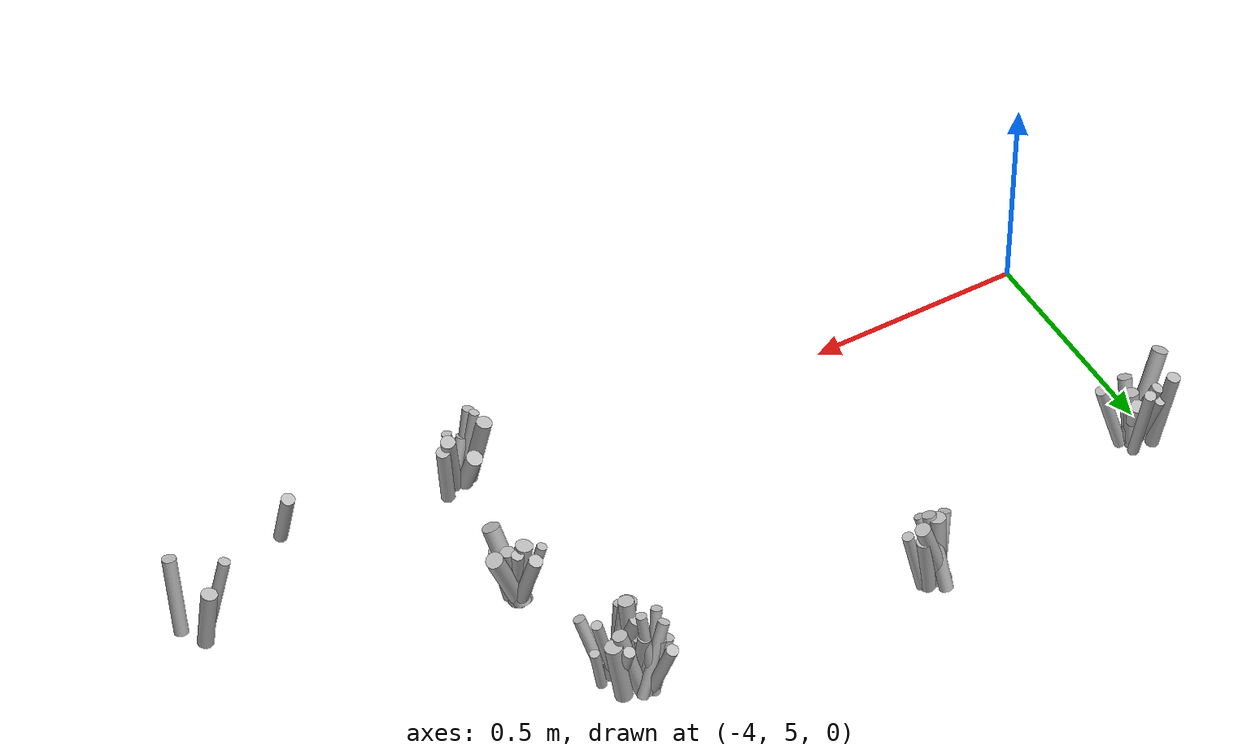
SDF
<sdf version="1.6">
 <world name="default">
  <model name="tussocks">
   <static>true</static>
   <link name="tuft38_6">
    <pose>-2.2297 4.8988 0.0752 0 0.2755 1.7186</pose>
    <visual name="tuft38_6_v">
     <geometry><cylinder><radius>0.0152</radius><length>0.1636</length></cylinder></geometry>
     <material>
      <script>
       <uri>model://bushfire/materials/scripts</uri>
       <uri>model://bushfire/materials/textures</uri>
       <name>Bushfire/Tussock</name>
      </script>
     </material>
    </visual>
   </link>
   <link name="tuft39_2">
    <pose>-1.9297 4.9894 0.0888 0 0.2311 4.5273</pose>
    <visual name="tuft39_2_v">
     <geometry><cylinder><radius>0.0159</radius><length>0.1931</length></cylinder></geometry>
     <material>
      <script>
       <uri>model://bushfire/materials/scripts</uri>
       <uri>model://bushfire/materials/textures</uri>
       <name>Bushfire/Foliage2</name>
      </script>
     </material>
    </visual>
   </link>
   <link name="tuft39_4">
    <pose>-1.9666 5.0642 0.0701 0 0.1253 2.7636</pose>
    <visual name="tuft39_4_v">
     <geometry><cylinder><radius>0.0181</radius><length>0.1523</length></cylinder></geometry>
     <material>
      <script>
       <uri>model://bushfire/materials/scripts</uri>
       <uri>model://bushfire/materials/textures</uri>
       <name>Bushfire/Foliage2</name>
      </script>
     </material>
    </visual>
   </link>
   <link name="tuft39_7">
    <pose>-1.9930 5.0530 0.1028 0 0.2592 3.0400</pose>
    <visual name="tuft39_7_v">
     <geometry><cylinder><radius>0.0130</radius><length>0.2236</length></cylinder></geometry>
     <material>
      <script>
       <uri>model://bushfire/materials/scripts</uri>
       <uri>model://bushfire/materials/textures</uri>
       <name>Bushfire/Foliage2</name>
      </script>
     </material>
    </visual>
   </link>
   <link name="tuft41_0">
    <pose>-2.6344 4.8865 0.0477 0 0.1887 4.8185</pose>
    <visual name="tuft41_0_v">
     <geometry><cylinder><radius>0.0114</radius><length>0.1036</length></cylinder></geometry>
     <material>
      <script>
       <uri>model://bushfire/materials/scripts</uri>
       <uri>model://bushfire/materials/textures</uri>
       <name>Bushfire/Foliage2</name>
      </script>
     </material>
    </visual>
   </link>
   <link name="tuft41_1">
    <pose>-2.6728 4.9408 0.0852 0 0.2078 2.4700</pose>
    <visual name="tuft41_1_v">
     <geometry><cylinder><radius>0.0176</radius><length>0.1852</length></cylinder></geometry>
     <material>
      <script>
       <uri>model://bushfire/materials/scripts</uri>
       <uri>model://bushfire/materials/textures</uri>
       <name>Bushfire/Foliage2</name>
      </script>
     </material>
    </visual>
   </link>
   <link name="tuft41_2">
    <pose>-2.5852 4.9614 0.0742 0 0.1050 0.7553</pose>
    <visual name="tuft41_2_v">
     <geometry><cylinder><radius>0.0155</radius><length>0.1613</length></cylinder></geometry>
     <material>
      <script>
       <uri>model://bushfire/materials/scripts</uri>
       <uri>model://bushfire/materials/textures</uri>
       <name>Bushfire/Tussock</name>
      </script>
     </material>
    </visual>
   </link>
   <link name="tuft41_4">
    <pose>-2.6436 4.9608 0.0558 0 0.3550 1.7035</pose>
    <visual name="tuft41_4_v">
     <geometry><cylinder><radius>0.0183</radius><length>0.1213</length></cylinder></geometry>
     <material>
      <script>
       <uri>model://bushfire/materials/scripts</uri>
       <uri>model://bushfire/materials/textures</uri>
       <name>Bushfire/Tussock</name>
      </script>
     </material>
    </visual>
   </link>
   <link name="tuft41_5">
    <pose>-2.6412 4.9101 0.0488 0 0.4099 3.6749</pose>
    <visual name="tuft41_5_v">
     <geometry><cylinder><radius>0.0138</radius><length>0.1060</length></cylinder></geometry>
     <material>
      <script>
       <uri>model://bushfire/materials/scripts</uri>
       <uri>model://bushfire/materials/textures</uri>
       <name>Bushfire/Foliage2</name>
      </script>
     </material>
    </visual>
   </link>
   <link name="tuft41_6">
    <pose>-2.6673 4.9087 0.0797 0 0.2387 3.2671</pose>
    <visual name="tuft41_6_v">
     <geometry><cylinder><radius>0.0114</radius><length>0.1732</length></cylinder></geometry>
     <material>
      <script>
       <uri>model://bushfire/materials/scripts</uri>
       <uri>model://bushfire/materials/textures</uri>
       <name>Bushfire/Foliage2</name>
      </script>
     </material>
    </visual>
   </link>
   <link name="tuft41_8">
    <pose>-2.6066 4.9487 0.0851 0 0.2193 0.8702</pose>
    <visual name="tuft41_8_v">
     <geometry><cylinder><radius>0.0165</radius><length>0.1850</length></cylinder></geometry>
     <material>
      <script>
       <uri>model://bushfire/materials/scripts</uri>
       <uri>model://bushfire/materials/textures</uri>
       <name>Bushfire/Tussock</name>
      </script>
     </material>
    </visual>
   </link>
   <link name="tuft41_9">
    <pose>-2.6629 4.8992 0.0793 0 0.2523 3.6186</pose>
    <visual name="tuft41_9_v">
     <geometry><cylinder><radius>0.0131</radius><length>0.1724</length></cylinder></geometry>
     <material>
      <script>
       <uri>model://bushfire/materials/scripts</uri>
       <uri>model://bushfire/materials/textures</uri>
       <name>Bushfire/Foliage2</name>
      </script>
     </material>
    </visual>
   </link>
   <link name="tuft67_0">
    <pose>-4.0101 5.5931 0.0963 0 0.1549 2.5951</pose>
    <visual name="tuft67_0_v">
     <geometry><cylinder><radius>0.0153</radius><length>0.2094</length></cylinder></geometry>
     <material>
      <script>
       <uri>model://bushfire/materials/scripts</uri>
       <uri>model://bushfire/materials/textures</uri>
       <name>Bushfire/Tussock</name>
      </script>
     </material>
    </visual>
   </link>
   <link name="tuft67_1">
    <pose>-3.9594 5.5352 0.0730 0 0.3567 4.5427</pose>
    <visual name="tuft67_1_v">
     <geometry><cylinder><radius>0.0161</radius><length>0.1588</length></cylinder></geometry>
     <material>
      <script>
       <uri>model://bushfire/materials/scripts</uri>
       <uri>model://bushfire/materials/textures</uri>
       <name>Bushfire/Foliage2</name>
      </script>
     </material>
    </visual>
   </link>
   <link name="tuft67_2">
    <pose>-3.9554 5.5572 0.0659 0 0.1672 4.6291</pose>
    <visual name="tuft67_2_v">
     <geometry><cylinder><radius>0.0173</radius><length>0.1433</length></cylinder></geometry>
     <material>
      <script>
       <uri>model://bushfire/materials/scripts</uri>
       <uri>model://bushfire/materials/textures</uri>
       <name>Bushfire/Tussock</name>
      </script>
     </material>
    </visual>
   </link>
   <link name="tuft67_3">
    <pose>-3.9940 5.5448 0.1065 0 0.4038 3.5072</pose>
    <visual name="tuft67_3_v">
     <geometry><cylinder><radius>0.0185</radius><length>0.2316</length></cylinder></geometry>
     <material>
      <script>
       <uri>model://bushfire/materials/scripts</uri>
       <uri>model://bushfire/materials/textures</uri>
       <name>Bushfire/Tussock</name>
      </script>
     </material>
    </visual>
   </link>
   <link name="tuft67_4">
    <pose>-3.9376 5.6173 0.1156 0 0.2645 1.2750</pose>
    <visual name="tuft67_4_v">
     <geometry><cylinder><radius>0.0130</radius><length>0.2514</length></cylinder></geometry>
     <material>
      <script>
       <uri>model://bushfire/materials/scripts</uri>
       <uri>model://bushfire/materials/textures</uri>
       <name>Bushfire/Foliage2</name>
      </script>
     </material>
    </visual>
   </link>
   <link name="tuft67_5">
    <pose>-3.9532 5.5643 0.0721 0 0.3986 1.1680</pose>
    <visual name="tuft67_5_v">
     <geometry><cylinder><radius>0.0153</radius><length>0.1567</length></cylinder></geometry>
     <material>
      <script>
       <uri>model://bushfire/materials/scripts</uri>
       <uri>model://bushfire/materials/textures</uri>
       <name>Bushfire/Foliage2</name>
      </script>
     </material>
    </visual>
   </link>
   <link name="tuft67_6">
    <pose>-3.9791 5.5839 0.0687 0 0.2859 2.3498</pose>
    <visual name="tuft67_6_v">
     <geometry><cylinder><radius>0.0137</radius><length>0.1493</length></cylinder></geometry>
     <material>
      <script>
       <uri>model://bushfire/materials/scripts</uri>
       <uri>model://bushfire/materials/textures</uri>
       <name>Bushfire/Foliage2</name>
      </script>
     </material>
    </visual>
   </link>
   <link name="tuft67_7">
    <pose>-3.9681 5.5666 0.0815 0 0.3993 2.6503</pose>
    <visual name="tuft67_7_v">
     <geometry><cylinder><radius>0.0142</radius><length>0.1771</length></cylinder></geometry>
     <material>
      <script>
       <uri>model://bushfire/materials/scripts</uri>
       <uri>model://bushfire/materials/textures</uri>
       <name>Bushfire/Tussock</name>
      </script>
     </material>
    </visual>
   </link>
   <link name="tuft67_8">
    <pose>-3.9065 5.5466 0.0871 0 0.2959 6.0212</pose>
    <visual name="tuft67_8_v">
     <geometry><cylinder><radius>0.0138</radius><length>0.1894</length></cylinder></geometry>
     <material>
      <script>
       <uri>model://bushfire/materials/scripts</uri>
       <uri>model://bushfire/materials/textures</uri>
       <name>Bushfire/Foliage2</name>
      </script>
     </material>
    </visual>
   </link>
   <link name="tuft73_0">
    <pose>-2.5867 5.2920 0.0798 0 0.1187 2.9032</pose>
    <visual name="tuft73_0_v">
     <geometry><cylinder><radius>0.0191</radius><length>0.1735</length></cylinder></geometry>
     <material>
      <script>
       <uri>model://bushfire/materials/scripts</uri>
       <uri>model://bushfire/materials/textures</uri>
       <name>Bushfire/Foliage2</name>
      </script>
     </material>
    </visual>
   </link>
   <link name="tuft73_1">
    <pose>-2.6126 5.2981 0.0738 0 0.2813 2.9074</pose>
    <visual name="tuft73_1_v">
     <geometry><cylinder><radius>0.0116</radius><length>0.1605</length></cylinder></geometry>
     <material>
      <script>
       <uri>model://bushfire/materials/scripts</uri>
       <uri>model://bushfire/materials/textures</uri>
       <name>Bushfire/Tussock</name>
      </script>
     </material>
    </visual>
   </link>
   <link name="tuft73_2">
    <pose>-2.5520 5.2964 0.0851 0 0.3510 0.2314</pose>
    <visual name="tuft73_2_v">
     <geometry><cylinder><radius>0.0195</radius><length>0.1851</length></cylinder></geometry>
     <material>
      <script>
       <uri>model://bushfire/materials/scripts</uri>
       <uri>model://bushfire/materials/textures</uri>
       <name>Bushfire/Tussock</name>
      </script>
     </material>
    </visual>
   </link>
   <link name="tuft73_3">
    <pose>-2.5778 5.2938 0.0771 0 0.1514 1.3186</pose>
    <visual name="tuft73_3_v">
     <geometry><cylinder><radius>0.0135</radius><length>0.1677</length></cylinder></geometry>
     <material>
      <script>
       <uri>model://bushfire/materials/scripts</uri>
       <uri>model://bushfire/materials/textures</uri>
       <name>Bushfire/Foliage2</name>
      </script>
     </material>
    </visual>
   </link>
   <link name="tuft73_4">
    <pose>-2.5860 5.3255 0.0886 0 0.3139 1.7742</pose>
    <visual name="tuft73_4_v">
     <geometry><cylinder><radius>0.0154</radius><length>0.1925</length></cylinder></geometry>
     <material>
      <script>
       <uri>model://bushfire/materials/scripts</uri>
       <uri>model://bushfire/materials/textures</uri>
       <name>Bushfire/Tussock</name>
      </script>
     </material>
    </visual>
   </link>
   <link name="tuft73_5">
    <pose>-2.5627 5.2583 0.0612 0 0.2647 5.1800</pose>
    <visual name="tuft73_5_v">
     <geometry><cylinder><radius>0.0157</radius><length>0.1331</length></cylinder></geometry>
     <material>
      <script>
       <uri>model://bushfire/materials/scripts</uri>
       <uri>model://bushfire/materials/textures</uri>
       <name>Bushfire/Foliage2</name>
      </script>
     </material>
    </visual>
   </link>
   <link name="tuft73_6">
    <pose>-2.5782 5.2899 0.0762 0 0.2171 5.9944</pose>
    <visual name="tuft73_6_v">
     <geometry><cylinder><radius>0.0159</radius><length>0.1656</length></cylinder></geometry>
     <material>
      <script>
       <uri>model://bushfire/materials/scripts</uri>
       <uri>model://bushfire/materials/textures</uri>
       <name>Bushfire/Foliage2</name>
      </script>
     </material>
    </visual>
   </link>
   <link name="tuft73_7">
    <pose>-2.5690 5.2655 0.0920 0 0.4173 5.0909</pose>
    <visual name="tuft73_7_v">
     <geometry><cylinder><radius>0.0199</radius><length>0.1999</length></cylinder></geometry>
     <material>
      <script>
       <uri>model://bushfire/materials/scripts</uri>
       <uri>model://bushfire/materials/textures</uri>
       <name>Bushfire/Tussock</name>
      </script>
     </material>
    </visual>
   </link>
   <link name="tuft80_0">
    <pose>-2.7278 5.6122 0.0880 0 0.2760 4.0215</pose>
    <visual name="tuft80_0_v">
     <geometry><cylinder><radius>0.0121</radius><length>0.1914</length></cylinder></geometry>
     <material>
      <script>
       <uri>model://bushfire/materials/scripts</uri>
       <uri>model://bushfire/materials/textures</uri>
       <name>Bushfire/Foliage2</name>
      </script>
     </material>
    </visual>
   </link>
   <link name="tuft80_1">
    <pose>-2.6933 5.6196 0.0644 0 0.3330 5.1146</pose>
    <visual name="tuft80_1_v">
     <geometry><cylinder><radius>0.0110</radius><length>0.1400</length></cylinder></geometry>
     <material>
      <script>
       <uri>model://bushfire/materials/scripts</uri>
       <uri>model://bushfire/materials/textures</uri>
       <name>Bushfire/Foliage2</name>
      </script>
     </material>
    </visual>
   </link>
   <link name="tuft80_2">
    <pose>-2.7087 5.6402 0.0877 0 0.3729 3.4935</pose>
    <visual name="tuft80_2_v">
     <geometry><cylinder><radius>0.0129</radius><length>0.1906</length></cylinder></geometry>
     <material>
      <script>
       <uri>model://bushfire/materials/scripts</uri>
       <uri>model://bushfire/materials/textures</uri>
       <name>Bushfire/Foliage2</name>
      </script>
     </material>
    </visual>
   </link>
   <link name="tuft80_3">
    <pose>-2.7093 5.6404 0.0661 0 0.2960 3.4359</pose>
    <visual name="tuft80_3_v">
     <geometry><cylinder><radius>0.0136</radius><length>0.1437</length></cylinder></geometry>
     <material>
      <script>
       <uri>model://bushfire/materials/scripts</uri>
       <uri>model://bushfire/materials/textures</uri>
       <name>Bushfire/Foliage2</name>
      </script>
     </material>
    </visual>
   </link>
   <link name="tuft80_4">
    <pose>-2.6994 5.6355 0.1041 0 0.1465 5.1946</pose>
    <visual name="tuft80_4_v">
     <geometry><cylinder><radius>0.0117</radius><length>0.2263</length></cylinder></geometry>
     <material>
      <script>
       <uri>model://bushfire/materials/scripts</uri>
       <uri>model://bushfire/materials/textures</uri>
       <name>Bushfire/Tussock</name>
      </script>
     </material>
    </visual>
   </link>
   <link name="tuft80_5">
    <pose>-2.6982 5.6288 0.0662 0 0.2182 5.0493</pose>
    <visual name="tuft80_5_v">
     <geometry><cylinder><radius>0.0150</radius><length>0.1439</length></cylinder></geometry>
     <material>
      <script>
       <uri>model://bushfire/materials/scripts</uri>
       <uri>model://bushfire/materials/textures</uri>
       <name>Bushfire/Tussock</name>
      </script>
     </material>
    </visual>
   </link>
   <link name="tuft80_6">
    <pose>-2.7291 5.6319 0.0585 0 0.3514 3.5221</pose>
    <visual name="tuft80_6_v">
     <geometry><cylinder><radius>0.0169</radius><length>0.1273</length></cylinder></geometry>
     <material>
      <script>
       <uri>model://bushfire/materials/scripts</uri>
       <uri>model://bushfire/materials/textures</uri>
       <name>Bushfire/Tussock</name>
      </script>
     </material>
    </visual>
   </link>
   <link name="tuft80_7">
    <pose>-2.7074 5.6787 0.0952 0 0.3576 1.6924</pose>
    <visual name="tuft80_7_v">
     <geometry><cylinder><radius>0.0135</radius><length>0.2070</length></cylinder></geometry>
     <material>
      <script>
       <uri>model://bushfire/materials/scripts</uri>
       <uri>model://bushfire/materials/textures</uri>
       <name>Bushfire/Tussock</name>
      </script>
     </material>
    </visual>
   </link>
   <link name="tuft80_8">
    <pose>-2.6867 5.5858 0.1058 0 0.1140 4.9926</pose>
    <visual name="tuft80_8_v">
     <geometry><cylinder><radius>0.0174</radius><length>0.2300</length></cylinder></geometry>
     <material>
      <script>
       <uri>model://bushfire/materials/scripts</uri>
       <uri>model://bushfire/materials/textures</uri>
       <name>Bushfire/Tussock</name>
      </script>
     </material>
    </visual>
   </link>
   <link name="tuft80_9">
    <pose>-2.6657 5.6224 0.0835 0 0.2481 5.7922</pose>
    <visual name="tuft80_9_v">
     <geometry><cylinder><radius>0.0165</radius><length>0.1815</length></cylinder></geometry>
     <material>
      <script>
       <uri>model://bushfire/materials/scripts</uri>
       <uri>model://bushfire/materials/textures</uri>
       <name>Bushfire/Tussock</name>
      </script>
     </material>
    </visual>
   </link>
   <link name="tuft80_10">
    <pose>-2.6371 5.6222 0.0744 0 0.1297 5.9867</pose>
    <visual name="tuft80_10_v">
     <geometry><cylinder><radius>0.0198</radius><length>0.1618</length></cylinder></geometry>
     <material>
      <script>
       <uri>model://bushfire/materials/scripts</uri>
       <uri>model://bushfire/materials/textures</uri>
       <name>Bushfire/Foliage2</name>
      </script>
     </material>
    </visual>
   </link>
   <link name="tuft104_0">
    <pose>-2.6873 5.6215 0.0751 0 0.1396 2.1365</pose>
    <visual name="tuft104_0_v">
     <geometry><cylinder><radius>0.0137</radius><length>0.1632</length></cylinder></geometry>
     <material>
      <script>
       <uri>model://bushfire/materials/scripts</uri>
       <uri>model://bushfire/materials/textures</uri>
       <name>Bushfire/Foliage2</name>
      </script>
     </material>
    </visual>
   </link>
   <link name="tuft104_1">
    <pose>-2.6500 5.6206 0.0792 0 0.3703 1.4484</pose>
    <visual name="tuft104_1_v">
     <geometry><cylinder><radius>0.0130</radius><length>0.1722</length></cylinder></geometry>
     <material>
      <script>
       <uri>model://bushfire/materials/scripts</uri>
       <uri>model://bushfire/materials/textures</uri>
       <name>Bushfire/Tussock</name>
      </script>
     </material>
    </visual>
   </link>
   <link name="tuft104_2">
    <pose>-2.6113 5.5809 0.0529 0 0.1550 0.1925</pose>
    <visual name="tuft104_2_v">
     <geometry><cylinder><radius>0.0111</radius><length>0.1150</length></cylinder></geometry>
     <material>
      <script>
       <uri>model://bushfire/materials/scripts</uri>
       <uri>model://bushfire/materials/textures</uri>
       <name>Bushfire/Tussock</name>
      </script>
     </material>
    </visual>
   </link>
   <link name="tuft104_3">
    <pose>-2.6825 5.5437 0.0765 0 0.2789 3.9629</pose>
    <visual name="tuft104_3_v">
     <geometry><cylinder><radius>0.0173</radius><length>0.1662</length></cylinder></geometry>
     <material>
      <script>
       <uri>model://bushfire/materials/scripts</uri>
       <uri>model://bushfire/materials/textures</uri>
       <name>Bushfire/Tussock</name>
      </script>
     </material>
    </visual>
   </link>
   <link name="tuft104_4">
    <pose>-2.6687 5.5816 0.0901 0 0.3236 2.5009</pose>
    <visual name="tuft104_4_v">
     <geometry><cylinder><radius>0.0171</radius><length>0.1958</length></cylinder></geometry>
     <material>
      <script>
       <uri>model://bushfire/materials/scripts</uri>
       <uri>model://bushfire/materials/textures</uri>
       <name>Bushfire/Tussock</name>
      </script>
     </material>
    </visual>
   </link>
   <link name="tuft104_5">
    <pose>-2.6360 5.5698 0.0854 0 0.2089 6.1678</pose>
    <visual name="tuft104_5_v">
     <geometry><cylinder><radius>0.0123</radius><length>0.1857</length></cylinder></geometry>
     <material>
      <script>
       <uri>model://bushfire/materials/scripts</uri>
       <uri>model://bushfire/materials/textures</uri>
       <name>Bushfire/Tussock</name>
      </script>
     </material>
    </visual>
   </link>
   <link name="tuft104_6">
    <pose>-2.6840 5.5558 0.0878 0 0.2551 3.6686</pose>
    <visual name="tuft104_6_v">
     <geometry><cylinder><radius>0.0195</radius><length>0.1908</length></cylinder></geometry>
     <material>
      <script>
       <uri>model://bushfire/materials/scripts</uri>
       <uri>model://bushfire/materials/textures</uri>
       <name>Bushfire/Tussock</name>
      </script>
     </material>
    </visual>
   </link>
   <link name="tuft104_7">
    <pose>-2.6255 5.5220 0.0648 0 0.3692 5.2587</pose>
    <visual name="tuft104_7_v">
     <geometry><cylinder><radius>0.0133</radius><length>0.1409</length></cylinder></geometry>
     <material>
      <script>
       <uri>model://bushfire/materials/scripts</uri>
       <uri>model://bushfire/materials/textures</uri>
       <name>Bushfire/Foliage2</name>
      </script>
     </material>
    </visual>
   </link>
   <link name="tuft133_1">
    <pose>-3.3225 5.6797 0.0803 0 0.2211 6.0589</pose>
    <visual name="tuft133_1_v">
     <geometry><cylinder><radius>0.0127</radius><length>0.1745</length></cylinder></geometry>
     <material>
      <script>
       <uri>model://bushfire/materials/scripts</uri>
       <uri>model://bushfire/materials/textures</uri>
       <name>Bushfire/Foliage2</name>
      </script>
     </material>
    </visual>
   </link>
   <link name="tuft133_3">
    <pose>-3.4126 5.6458 0.0630 0 0.4192 4.0367</pose>
    <visual name="tuft133_3_v">
     <geometry><cylinder><radius>0.0137</radius><length>0.1370</length></cylinder></geometry>
     <material>
      <script>
       <uri>model://bushfire/materials/scripts</uri>
       <uri>model://bushfire/materials/textures</uri>
       <name>Bushfire/Foliage2</name>
      </script>
     </material>
    </visual>
   </link>
   <link name="tuft133_4">
    <pose>-3.3746 5.6861 0.0878 0 0.3457 4.9065</pose>
    <visual name="tuft133_4_v">
     <geometry><cylinder><radius>0.0156</radius><length>0.1908</length></cylinder></geometry>
     <material>
      <script>
       <uri>model://bushfire/materials/scripts</uri>
       <uri>model://bushfire/materials/textures</uri>
       <name>Bushfire/Foliage2</name>
      </script>
     </material>
    </visual>
   </link>
   <link name="tuft133_5">
    <pose>-3.3682 5.6767 0.0856 0 0.4170 5.1767</pose>
    <visual name="tuft133_5_v">
     <geometry><cylinder><radius>0.0114</radius><length>0.1861</length></cylinder></geometry>
     <material>
      <script>
       <uri>model://bushfire/materials/scripts</uri>
       <uri>model://bushfire/materials/textures</uri>
       <name>Bushfire/Foliage2</name>
      </script>
     </material>
    </visual>
   </link>
   <link name="tuft133_6">
    <pose>-3.3439 5.6903 0.0702 0 0.1057 6.2363</pose>
    <visual name="tuft133_6_v">
     <geometry><cylinder><radius>0.0173</radius><length>0.1526</length></cylinder></geometry>
     <material>
      <script>
       <uri>model://bushfire/materials/scripts</uri>
       <uri>model://bushfire/materials/textures</uri>
       <name>Bushfire/Foliage2</name>
      </script>
     </material>
    </visual>
   </link>
   <link name="tuft133_7">
    <pose>-3.3612 5.6911 0.0915 0 0.3098 6.2344</pose>
    <visual name="tuft133_7_v">
     <geometry><cylinder><radius>0.0173</radius><length>0.1988</length></cylinder></geometry>
     <material>
      <script>
       <uri>model://bushfire/materials/scripts</uri>
       <uri>model://bushfire/materials/textures</uri>
       <name>Bushfire/Tussock</name>
      </script>
     </material>
    </visual>
   </link>
   <link name="tuft133_8">
    <pose>-3.3787 5.6765 0.0839 0 0.1035 4.5223</pose>
    <visual name="tuft133_8_v">
     <geometry><cylinder><radius>0.0195</radius><length>0.1825</length></cylinder></geometry>
     <material>
      <script>
       <uri>model://bushfire/materials/scripts</uri>
       <uri>model://bushfire/materials/textures</uri>
       <name>Bushfire/Tussock</name>
      </script>
     </material>
    </visual>
   </link>
  </model>
 </world>
</sdf>
